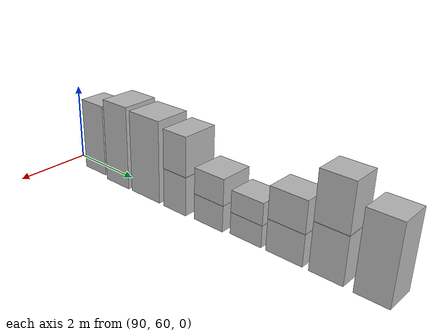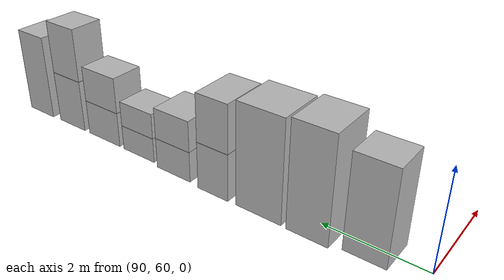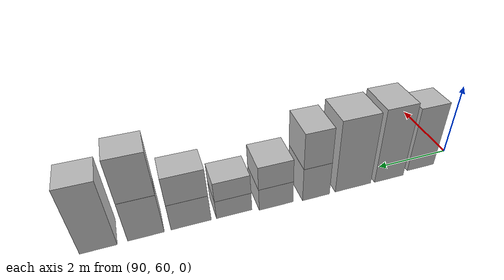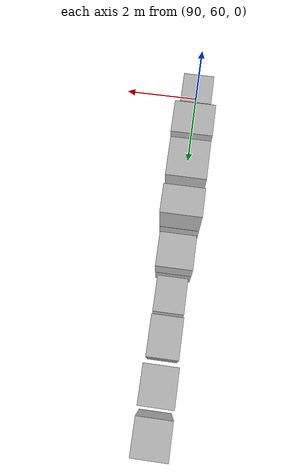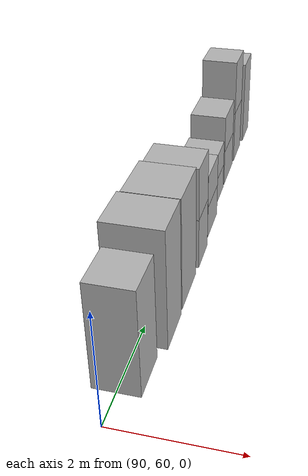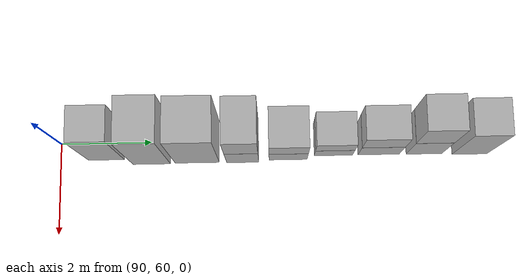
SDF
<sdf version="1.5">
 <world name="default">
  <model name="ground_plane">
   <static>true</static>
   <link name="link">
    <collision name="collision">
     <geometry><plane><normal>0 0 1</normal><size>250 250</size></plane></geometry>
     <surface><friction><ode><mu>1</mu><mu2>1</mu2></ode></friction></surface>
    </collision>
    <visual name="grass">
     <cast_shadows>false</cast_shadows>
     <geometry><mesh><uri>file://grass_plane/meshes/grass_plane.dae</uri></mesh></geometry>
    </visual>
   </link>
  </model>
  <model name="Cardboard_box_711">
   <link name="link_0">
    <pose>90 61 0 0 0 0</pose>
    <inertial>
     <mass>1</mass>
     <inertia>
      <ixx>0.166667</ixx>
      <ixy>0</ixy>
      <ixz>0</ixz>
      <iyy>0.166667</iyy>
      <iyz>0</iyz>
      <izz>0.166667</izz>
     </inertia>
    </inertial>
    <collision name="collision">
     <geometry>
      <mesh>
       <uri>model://Cardboard_box/meshes/cardboard_box.dae</uri>
       <scale>1.8746517157 1.99244399172 4.77672996306</scale>
      </mesh>
     </geometry>
    </collision>
    <visual name="visual">
     <geometry>
      <mesh>
       <uri>model://Cardboard_box/meshes/cardboard_box.dae</uri>
       <scale>1.8746517157 1.99244399172 4.77672996306</scale>
      </mesh>
     </geometry>
    </visual>
   </link>
   <static>1</static>
  </model>
  <model name="Cardboard_box_712">
   <link name="link_0">
    <pose>90 62 0 0 0 0</pose>
    <inertial>
     <mass>1</mass>
     <inertia>
      <ixx>0.166667</ixx>
      <ixy>0</ixy>
      <ixz>0</ixz>
      <iyy>0.166667</iyy>
      <iyz>0</iyz>
      <izz>0.166667</izz>
     </inertia>
    </inertial>
    <collision name="collision">
     <geometry>
      <mesh>
       <uri>model://Cardboard_box/meshes/cardboard_box.dae</uri>
       <scale>2.43711649108 2.07066697956 5.45109853652</scale>
      </mesh>
     </geometry>
    </collision>
    <visual name="visual">
     <geometry>
      <mesh>
       <uri>model://Cardboard_box/meshes/cardboard_box.dae</uri>
       <scale>2.43711649108 2.07066697956 5.45109853652</scale>
      </mesh>
     </geometry>
    </visual>
   </link>
   <static>1</static>
  </model>
  <model name="Cardboard_box_713">
   <link name="link_0">
    <pose>90 63 0 0 0 0</pose>
    <inertial>
     <mass>1</mass>
     <inertia>
      <ixx>0.166667</ixx>
      <ixy>0</ixy>
      <ixz>0</ixz>
      <iyy>0.166667</iyy>
      <iyz>0</iyz>
      <izz>0.166667</izz>
     </inertia>
    </inertial>
    <collision name="collision">
     <geometry>
      <mesh>
       <uri>model://Cardboard_box/meshes/cardboard_box.dae</uri>
       <scale>2.37133972761 2.4446858524 5.29824616562</scale>
      </mesh>
     </geometry>
    </collision>
    <visual name="visual">
     <geometry>
      <mesh>
       <uri>model://Cardboard_box/meshes/cardboard_box.dae</uri>
       <scale>2.37133972761 2.4446858524 5.29824616562</scale>
      </mesh>
     </geometry>
    </visual>
   </link>
   <static>1</static>
  </model>
  <model name="Cardboard_box_714">
   <link name="link_0">
    <pose>90 64 0 0 0 0</pose>
    <inertial>
     <mass>1</mass>
     <inertia>
      <ixx>0.166667</ixx>
      <ixy>0</ixy>
      <ixz>0</ixz>
      <iyy>0.166667</iyy>
      <iyz>0</iyz>
      <izz>0.166667</izz>
     </inertia>
    </inertial>
    <collision name="collision">
     <geometry>
      <mesh>
       <uri>model://Cardboard_box/meshes/cardboard_box.dae</uri>
       <scale>2.42950245762 1.77223629632 2.48284028126</scale>
      </mesh>
     </geometry>
    </collision>
    <visual name="visual">
     <geometry>
      <mesh>
       <uri>model://Cardboard_box/meshes/cardboard_box.dae</uri>
       <scale>2.42950245762 1.77223629632 2.48284028126</scale>
      </mesh>
     </geometry>
    </visual>
   </link>
   <static>1</static>
  </model>
  <model name="Cardboard_box_top_714">
   <link name="link_0">
    <pose>90 64 0.993136112505 0 0 0</pose>
    <inertial>
     <mass>1</mass>
     <inertia>
      <ixx>0.166667</ixx>
      <ixy>0</ixy>
      <ixz>0</ixz>
      <iyy>0.166667</iyy>
      <iyz>0</iyz>
      <izz>0.166667</izz>
     </inertia>
    </inertial>
    <collision name="collision">
     <geometry>
      <mesh>
       <uri>model://Cardboard_box/meshes/cardboard_box.dae</uri>
       <scale>2.42950245762 1.77223629632 2.48284028126</scale>
      </mesh>
     </geometry>
    </collision>
    <visual name="visual">
     <geometry>
      <mesh>
       <uri>model://Cardboard_box/meshes/cardboard_box.dae</uri>
       <scale>2.42950245762 1.77223629632 2.48284028126</scale>
      </mesh>
     </geometry>
    </visual>
   </link>
   <static>1</static>
  </model>
  <model name="Cardboard_box_715">
   <link name="link_0">
    <pose>90 65 0 0 0 0</pose>
    <inertial>
     <mass>1</mass>
     <inertia>
      <ixx>0.166667</ixx>
      <ixy>0</ixy>
      <ixz>0</ixz>
      <iyy>0.166667</iyy>
      <iyz>0</iyz>
      <izz>0.166667</izz>
     </inertia>
    </inertial>
    <collision name="collision">
     <geometry>
      <mesh>
       <uri>model://Cardboard_box/meshes/cardboard_box.dae</uri>
       <scale>2.20425041133 2.11891220251 1.63629247088</scale>
      </mesh>
     </geometry>
    </collision>
    <visual name="visual">
     <geometry>
      <mesh>
       <uri>model://Cardboard_box/meshes/cardboard_box.dae</uri>
       <scale>2.20425041133 2.11891220251 1.63629247088</scale>
      </mesh>
     </geometry>
    </visual>
   </link>
   <static>1</static>
  </model>
  <model name="Cardboard_box_top_715">
   <link name="link_0">
    <pose>90 65 0.654516988353 0 0 0</pose>
    <inertial>
     <mass>1</mass>
     <inertia>
      <ixx>0.166667</ixx>
      <ixy>0</ixy>
      <ixz>0</ixz>
      <iyy>0.166667</iyy>
      <iyz>0</iyz>
      <izz>0.166667</izz>
     </inertia>
    </inertial>
    <collision name="collision">
     <geometry>
      <mesh>
       <uri>model://Cardboard_box/meshes/cardboard_box.dae</uri>
       <scale>2.20425041133 2.11891220251 1.63629247088</scale>
      </mesh>
     </geometry>
    </collision>
    <visual name="visual">
     <geometry>
      <mesh>
       <uri>model://Cardboard_box/meshes/cardboard_box.dae</uri>
       <scale>2.20425041133 2.11891220251 1.63629247088</scale>
      </mesh>
     </geometry>
    </visual>
   </link>
   <static>1</static>
  </model>
  <model name="Cardboard_box_716">
   <link name="link_0">
    <pose>90 66 0 0 0 0</pose>
    <inertial>
     <mass>1</mass>
     <inertia>
      <ixx>0.166667</ixx>
      <ixy>0</ixy>
      <ixz>0</ixz>
      <iyy>0.166667</iyy>
      <iyz>0</iyz>
      <izz>0.166667</izz>
     </inertia>
    </inertial>
    <collision name="collision">
     <geometry>
      <mesh>
       <uri>model://Cardboard_box/meshes/cardboard_box.dae</uri>
       <scale>1.81697752556 2.13255211868 1.35225971703</scale>
      </mesh>
     </geometry>
    </collision>
    <visual name="visual">
     <geometry>
      <mesh>
       <uri>model://Cardboard_box/meshes/cardboard_box.dae</uri>
       <scale>1.81697752556 2.13255211868 1.35225971703</scale>
      </mesh>
     </geometry>
    </visual>
   </link>
   <static>1</static>
  </model>
  <model name="Cardboard_box_top_716">
   <link name="link_0">
    <pose>90 66 0.540903886813 0 0 0</pose>
    <inertial>
     <mass>1</mass>
     <inertia>
      <ixx>0.166667</ixx>
      <ixy>0</ixy>
      <ixz>0</ixz>
      <iyy>0.166667</iyy>
      <iyz>0</iyz>
      <izz>0.166667</izz>
     </inertia>
    </inertial>
    <collision name="collision">
     <geometry>
      <mesh>
       <uri>model://Cardboard_box/meshes/cardboard_box.dae</uri>
       <scale>1.81697752556 2.13255211868 1.35225971703</scale>
      </mesh>
     </geometry>
    </collision>
    <visual name="visual">
     <geometry>
      <mesh>
       <uri>model://Cardboard_box/meshes/cardboard_box.dae</uri>
       <scale>1.81697752556 2.13255211868 1.35225971703</scale>
      </mesh>
     </geometry>
    </visual>
   </link>
   <static>1</static>
  </model>
  <model name="Cardboard_box_717">
   <link name="link_0">
    <pose>90 67 0 0 0 0</pose>
    <inertial>
     <mass>1</mass>
     <inertia>
      <ixx>0.166667</ixx>
      <ixy>0</ixy>
      <ixz>0</ixz>
      <iyy>0.166667</iyy>
      <iyz>0</iyz>
      <izz>0.166667</izz>
     </inertia>
    </inertial>
    <collision name="collision">
     <geometry>
      <mesh>
       <uri>model://Cardboard_box/meshes/cardboard_box.dae</uri>
       <scale>1.79684826632 2.3004582125 1.92618778132</scale>
      </mesh>
     </geometry>
    </collision>
    <visual name="visual">
     <geometry>
      <mesh>
       <uri>model://Cardboard_box/meshes/cardboard_box.dae</uri>
       <scale>1.79684826632 2.3004582125 1.92618778132</scale>
      </mesh>
     </geometry>
    </visual>
   </link>
   <static>1</static>
  </model>
  <model name="Cardboard_box_top_717">
   <link name="link_0">
    <pose>90 67 0.770475112527 0 0 0</pose>
    <inertial>
     <mass>1</mass>
     <inertia>
      <ixx>0.166667</ixx>
      <ixy>0</ixy>
      <ixz>0</ixz>
      <iyy>0.166667</iyy>
      <iyz>0</iyz>
      <izz>0.166667</izz>
     </inertia>
    </inertial>
    <collision name="collision">
     <geometry>
      <mesh>
       <uri>model://Cardboard_box/meshes/cardboard_box.dae</uri>
       <scale>1.79684826632 2.3004582125 1.92618778132</scale>
      </mesh>
     </geometry>
    </collision>
    <visual name="visual">
     <geometry>
      <mesh>
       <uri>model://Cardboard_box/meshes/cardboard_box.dae</uri>
       <scale>1.79684826632 2.3004582125 1.92618778132</scale>
      </mesh>
     </geometry>
    </visual>
   </link>
   <static>1</static>
  </model>
  <model name="Cardboard_box_718">
   <link name="link_0">
    <pose>90 68 0 0 0 0</pose>
    <inertial>
     <mass>1</mass>
     <inertia>
      <ixx>0.166667</ixx>
      <ixy>0</ixy>
      <ixz>0</ixz>
      <iyy>0.166667</iyy>
      <iyz>0</iyz>
      <izz>0.166667</izz>
     </inertia>
    </inertial>
    <collision name="collision">
     <geometry>
      <mesh>
       <uri>model://Cardboard_box/meshes/cardboard_box.dae</uri>
       <scale>1.82082111535 1.98786628313 2.87326427416</scale>
      </mesh>
     </geometry>
    </collision>
    <visual name="visual">
     <geometry>
      <mesh>
       <uri>model://Cardboard_box/meshes/cardboard_box.dae</uri>
       <scale>1.82082111535 1.98786628313 2.87326427416</scale>
      </mesh>
     </geometry>
    </visual>
   </link>
   <static>1</static>
  </model>
  <model name="Cardboard_box_top_718">
   <link name="link_0">
    <pose>90 68 1.14930570966 0 0 0</pose>
    <inertial>
     <mass>1</mass>
     <inertia>
      <ixx>0.166667</ixx>
      <ixy>0</ixy>
      <ixz>0</ixz>
      <iyy>0.166667</iyy>
      <iyz>0</iyz>
      <izz>0.166667</izz>
     </inertia>
    </inertial>
    <collision name="collision">
     <geometry>
      <mesh>
       <uri>model://Cardboard_box/meshes/cardboard_box.dae</uri>
       <scale>1.82082111535 1.98786628313 2.87326427416</scale>
      </mesh>
     </geometry>
    </collision>
    <visual name="visual">
     <geometry>
      <mesh>
       <uri>model://Cardboard_box/meshes/cardboard_box.dae</uri>
       <scale>1.82082111535 1.98786628313 2.87326427416</scale>
      </mesh>
     </geometry>
    </visual>
   </link>
   <static>1</static>
  </model>
  <model name="Cardboard_box_719">
   <link name="link_0">
    <pose>90 69 0 0 0 0</pose>
    <inertial>
     <mass>1</mass>
     <inertia>
      <ixx>0.166667</ixx>
      <ixy>0</ixy>
      <ixz>0</ixz>
      <iyy>0.166667</iyy>
      <iyz>0</iyz>
      <izz>0.166667</izz>
     </inertia>
    </inertial>
    <collision name="collision">
     <geometry>
      <mesh>
       <uri>model://Cardboard_box/meshes/cardboard_box.dae</uri>
       <scale>1.93288203983 1.93808022848 4.70446297415</scale>
      </mesh>
     </geometry>
    </collision>
    <visual name="visual">
     <geometry>
      <mesh>
       <uri>model://Cardboard_box/meshes/cardboard_box.dae</uri>
       <scale>1.93288203983 1.93808022848 4.70446297415</scale>
      </mesh>
     </geometry>
    </visual>
   </link>
   <static>1</static>
  </model>
 </world>
</sdf>
